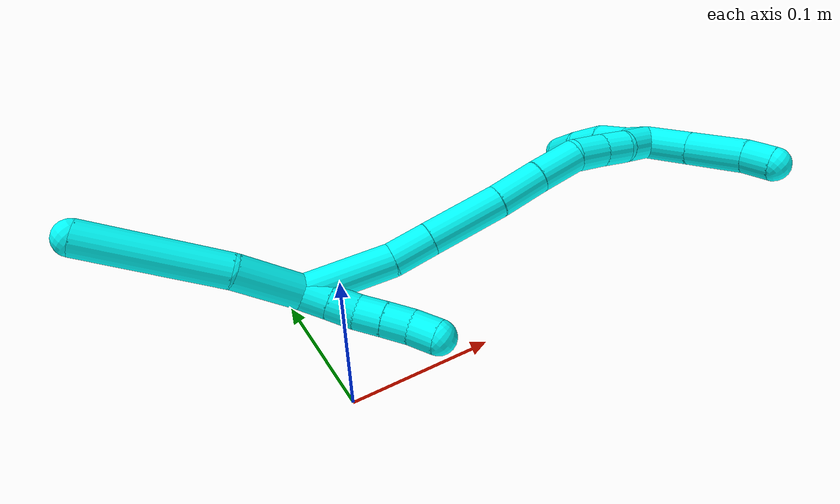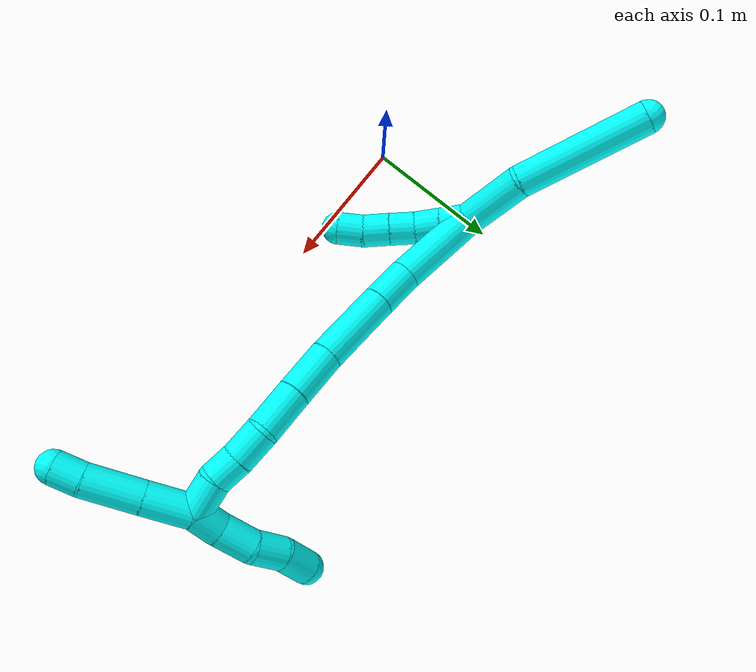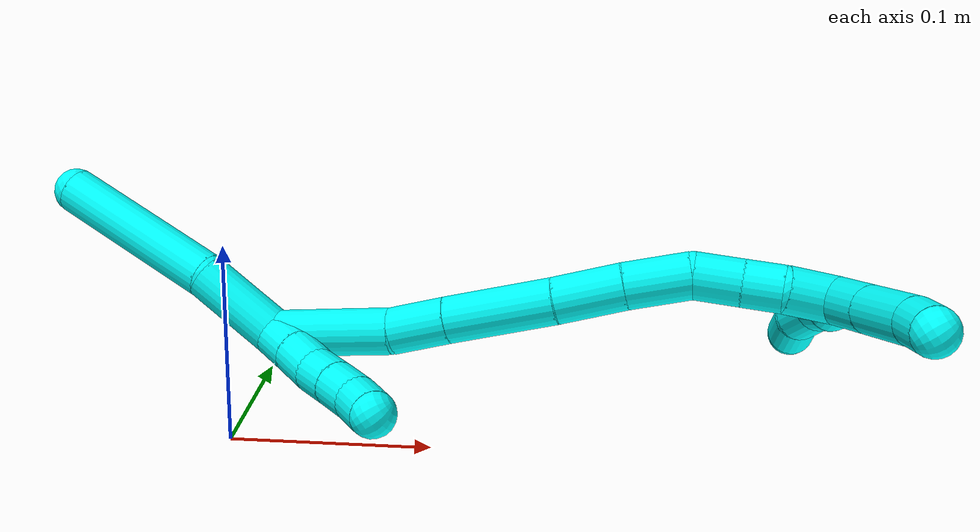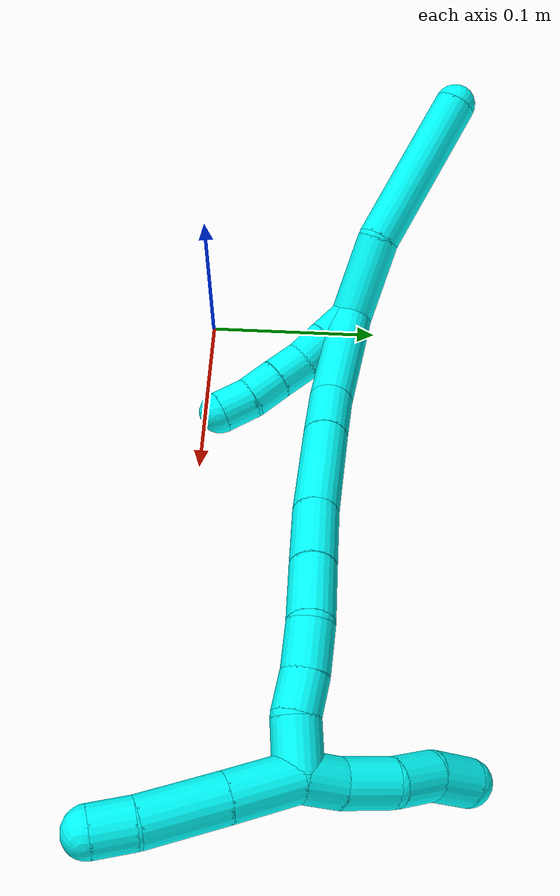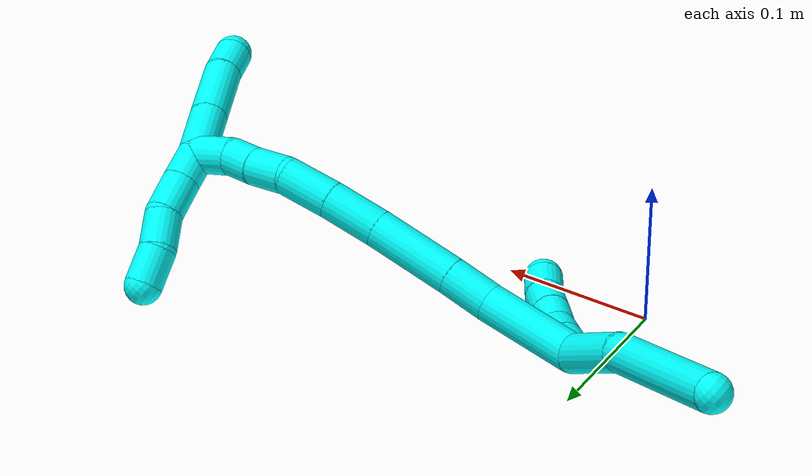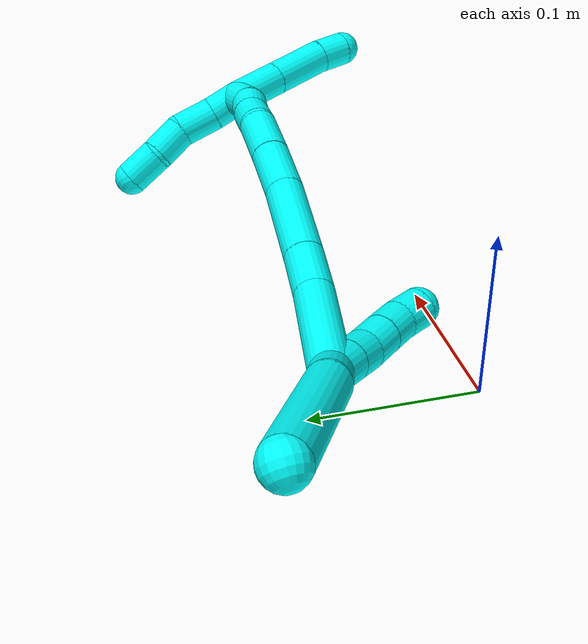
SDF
<sdf version="1.7">
 <world name="default">
  <model name="3">
   <static>0</static>
   <link name="3">
    <collision name="collision-cylinder-e_1_2_8">
     <pose>-0.023205 0.003755 -0.008558 -2.72813 -1.18795 2.53937</pose>
     <geometry><cylinder><radius>0.0125</radius><length>0.050032</length></cylinder></geometry>
     <surface>
      <friction><ode><mu>1.16</mu><mu2>1.16</mu2><slip1>0</slip1><slip2>0</slip2></ode></friction>
      <contact><ode><kp>1e+06</kp><kd>1</kd><max_vel>0</max_vel><min_depth>0.001</min_depth></ode></contact>
     </surface>
    </collision>
    <visual name="visual-cylinder-e_1_2_8">
     <pose>-0.023205 0.003755 -0.008558 -2.72813 -1.18795 2.53937</pose>
     <geometry><cylinder><radius>0.0125</radius><length>0.050032</length></cylinder></geometry>
     <material><ambient>0.003922 1 0.996078 1</ambient></material>
    </visual>
    <collision name="collision-cylinder-e_2_8_6">
     <pose>-0.087188 0.024235 -0.04069 -2.52454 -0.954169 2.03659</pose>
     <geometry><cylinder><radius>0.0125</radius><length>0.099968</length></cylinder></geometry>
     <surface>
      <friction><ode><mu>1.16</mu><mu2>1.16</mu2><slip1>0</slip1><slip2>0</slip2></ode></friction>
      <contact><ode><kp>1e+06</kp><kd>1</kd><max_vel>0</max_vel><min_depth>0.001</min_depth></ode></contact>
     </surface>
    </collision>
    <visual name="visual-cylinder-e_2_8_6">
     <pose>-0.087188 0.024235 -0.04069 -2.52454 -0.954169 2.03659</pose>
     <geometry><cylinder><radius>0.0125</radius><length>0.099968</length></cylinder></geometry>
     <material><ambient>0.003922 1 0.996078 1</ambient></material>
    </visual>
    <collision name="collision-cylinder-e_1_2_9">
     <pose>0.006921 -0.006111 0.003842 1.00948 0.764356 0.43703</pose>
     <geometry><cylinder><radius>0.0125</radius><length>0.02</length></cylinder></geometry>
     <surface>
      <friction><ode><mu>1.16</mu><mu2>1.16</mu2><slip1>0</slip1><slip2>0</slip2></ode></friction>
      <contact><ode><kp>1e+06</kp><kd>1</kd><max_vel>0</max_vel><min_depth>0.001</min_depth></ode></contact>
     </surface>
    </collision>
    <visual name="visual-cylinder-e_1_2_9">
     <pose>0.006921 -0.006111 0.003842 1.00948 0.764356 0.43703</pose>
     <geometry><cylinder><radius>0.0125</radius><length>0.02</length></cylinder></geometry>
     <material><ambient>0.003922 1 0.996078 1</ambient></material>
    </visual>
    <collision name="collision-cylinder-e_2_9_10">
     <pose>0.020872 -0.018296 0.011381 1.02411 0.77972 0.453933</pose>
     <geometry><cylinder><radius>0.0125</radius><length>0.02</length></cylinder></geometry>
     <surface>
      <friction><ode><mu>1.16</mu><mu2>1.16</mu2><slip1>0</slip1><slip2>0</slip2></ode></friction>
      <contact><ode><kp>1e+06</kp><kd>1</kd><max_vel>0</max_vel><min_depth>0.001</min_depth></ode></contact>
     </surface>
    </collision>
    <visual name="visual-cylinder-e_2_9_10">
     <pose>0.020872 -0.018296 0.011381 1.02411 0.77972 0.453933</pose>
     <geometry><cylinder><radius>0.0125</radius><length>0.02</length></cylinder></geometry>
     <material><ambient>0.003922 1 0.996078 1</ambient></material>
    </visual>
    <collision name="collision-cylinder-e_3_10_11">
     <pose>0.033418 -0.03135 0.019647 0.991183 0.584103 0.322239</pose>
     <geometry><cylinder><radius>0.0125</radius><length>0.02</length></cylinder></geometry>
     <surface>
      <friction><ode><mu>1.16</mu><mu2>1.16</mu2><slip1>0</slip1><slip2>0</slip2></ode></friction>
      <contact><ode><kp>1e+06</kp><kd>1</kd><max_vel>0</max_vel><min_depth>0.001</min_depth></ode></contact>
     </surface>
    </collision>
    <visual name="visual-cylinder-e_3_10_11">
     <pose>0.033418 -0.03135 0.019647 0.991183 0.584103 0.322239</pose>
     <geometry><cylinder><radius>0.0125</radius><length>0.02</length></cylinder></geometry>
     <material><ambient>0.003922 1 0.996078 1</ambient></material>
    </visual>
    <collision name="collision-cylinder-e_4_11_12">
     <pose>0.044708 -0.045174 0.028664 0.994475 0.61583 0.341835</pose>
     <geometry><cylinder><radius>0.0125</radius><length>0.02</length></cylinder></geometry>
     <surface>
      <friction><ode><mu>1.16</mu><mu2>1.16</mu2><slip1>0</slip1><slip2>0</slip2></ode></friction>
      <contact><ode><kp>1e+06</kp><kd>1</kd><max_vel>0</max_vel><min_depth>0.001</min_depth></ode></contact>
     </surface>
    </collision>
    <visual name="visual-cylinder-e_4_11_12">
     <pose>0.044708 -0.045174 0.028664 0.994475 0.61583 0.341835</pose>
     <geometry><cylinder><radius>0.0125</radius><length>0.02</length></cylinder></geometry>
     <material><ambient>0.003922 1 0.996078 1</ambient></material>
    </visual>
    <collision name="collision-cylinder-e_5_12_5">
     <pose>0.055224 -0.060045 0.036736 1.14676 0.493707 0.32262</pose>
     <geometry><cylinder><radius>0.0125</radius><length>0.02</length></cylinder></geometry>
     <surface>
      <friction><ode><mu>1.16</mu><mu2>1.16</mu2><slip1>0</slip1><slip2>0</slip2></ode></friction>
      <contact><ode><kp>1e+06</kp><kd>1</kd><max_vel>0</max_vel><min_depth>0.001</min_depth></ode></contact>
     </surface>
    </collision>
    <visual name="visual-cylinder-e_5_12_5">
     <pose>0.055224 -0.060045 0.036736 1.14676 0.493707 0.32262</pose>
     <geometry><cylinder><radius>0.0125</radius><length>0.02</length></cylinder></geometry>
     <material><ambient>0.003922 1 0.996078 1</ambient></material>
    </visual>
    <collision name="collision-cylinder-e_1_2_13">
     <pose>0.016243 -0.003818 0.028323 0.133998 0.516818 0.035468</pose>
     <geometry><cylinder><radius>0.0125</radius><length>0.065745</length></cylinder></geometry>
     <surface>
      <friction><ode><mu>1.16</mu><mu2>1.16</mu2><slip1>0</slip1><slip2>0</slip2></ode></friction>
      <contact><ode><kp>1e+06</kp><kd>1</kd><max_vel>0</max_vel><min_depth>0.001</min_depth></ode></contact>
     </surface>
    </collision>
    <visual name="visual-cylinder-e_1_2_13">
     <pose>0.016243 -0.003818 0.028323 0.133998 0.516818 0.035468</pose>
     <geometry><cylinder><radius>0.0125</radius><length>0.065745</length></cylinder></geometry>
     <material><ambient>0.003922 1 0.996078 1</ambient></material>
    </visual>
    <collision name="collision-cylinder-e_2_13_14">
     <pose>0.037831 -0.008655 0.071008 0.070797 0.355487 0.012723</pose>
     <geometry><cylinder><radius>0.0125</radius><length>0.030717</length></cylinder></geometry>
     <surface>
      <friction><ode><mu>1.16</mu><mu2>1.16</mu2><slip1>0</slip1><slip2>0</slip2></ode></friction>
      <contact><ode><kp>1e+06</kp><kd>1</kd><max_vel>0</max_vel><min_depth>0.001</min_depth></ode></contact>
     </surface>
    </collision>
    <visual name="visual-cylinder-e_2_13_14">
     <pose>0.037831 -0.008655 0.071008 0.070797 0.355487 0.012723</pose>
     <geometry><cylinder><radius>0.0125</radius><length>0.030717</length></cylinder></geometry>
     <material><ambient>0.003922 1 0.996078 1</ambient></material>
    </visual>
    <collision name="collision-cylinder-e_3_14_15">
     <pose>0.053828 -0.011085 0.112218 0.052547 0.377214 0.010032</pose>
     <geometry><cylinder><radius>0.0125</radius><length>0.057836</length></cylinder></geometry>
     <surface>
      <friction><ode><mu>1.16</mu><mu2>1.16</mu2><slip1>0</slip1><slip2>0</slip2></ode></friction>
      <contact><ode><kp>1e+06</kp><kd>1</kd><max_vel>0</max_vel><min_depth>0.001</min_depth></ode></contact>
     </surface>
    </collision>
    <visual name="visual-cylinder-e_3_14_15">
     <pose>0.053828 -0.011085 0.112218 0.052547 0.377214 0.010032</pose>
     <geometry><cylinder><radius>0.0125</radius><length>0.057836</length></cylinder></geometry>
     <material><ambient>0.003922 1 0.996078 1</ambient></material>
    </visual>
    <collision name="collision-cylinder-e_4_15_16">
     <pose>0.070861 -0.012379 0.156296 -0.006858 0.354682 -0.001229</pose>
     <geometry><cylinder><radius>0.0125</radius><length>0.036748</length></cylinder></geometry>
     <surface>
      <friction><ode><mu>1.16</mu><mu2>1.16</mu2><slip1>0</slip1><slip2>0</slip2></ode></friction>
      <contact><ode><kp>1e+06</kp><kd>1</kd><max_vel>0</max_vel><min_depth>0.001</min_depth></ode></contact>
     </surface>
    </collision>
    <visual name="visual-cylinder-e_4_15_16">
     <pose>0.070861 -0.012379 0.156296 -0.006858 0.354682 -0.001229</pose>
     <geometry><cylinder><radius>0.0125</radius><length>0.036748</length></cylinder></geometry>
     <material><ambient>0.003922 1 0.996078 1</ambient></material>
    </visual>
    <collision name="collision-cylinder-e_5_16_17">
     <pose>0.084069 -0.011894 0.189487 -0.023012 0.40411 -0.004714</pose>
     <geometry><cylinder><radius>0.0125</radius><length>0.034728</length></cylinder></geometry>
     <surface>
      <friction><ode><mu>1.16</mu><mu2>1.16</mu2><slip1>0</slip1><slip2>0</slip2></ode></friction>
      <contact><ode><kp>1e+06</kp><kd>1</kd><max_vel>0</max_vel><min_depth>0.001</min_depth></ode></contact>
     </surface>
    </collision>
    <visual name="visual-cylinder-e_5_16_17">
     <pose>0.084069 -0.011894 0.189487 -0.023012 0.40411 -0.004714</pose>
     <geometry><cylinder><radius>0.0125</radius><length>0.034728</length></cylinder></geometry>
     <material><ambient>0.003922 1 0.996078 1</ambient></material>
    </visual>
    <collision name="collision-cylinder-e_6_17_18">
     <pose>0.099317 -0.011398 0.215048 -0.013341 0.719934 -0.005021</pose>
     <geometry><cylinder><radius>0.0125</radius><length>0.02554</length></cylinder></geometry>
     <surface>
      <friction><ode><mu>1.16</mu><mu2>1.16</mu2><slip1>0</slip1><slip2>0</slip2></ode></friction>
      <contact><ode><kp>1e+06</kp><kd>1</kd><max_vel>0</max_vel><min_depth>0.001</min_depth></ode></contact>
     </surface>
    </collision>
    <visual name="visual-cylinder-e_6_17_18">
     <pose>0.099317 -0.011398 0.215048 -0.013341 0.719934 -0.005021</pose>
     <geometry><cylinder><radius>0.0125</radius><length>0.02554</length></cylinder></geometry>
     <material><ambient>0.003922 1 0.996078 1</ambient></material>
    </visual>
    <collision name="collision-cylinder-e_7_18_19">
     <pose>0.114564 -0.012297 0.232706 0.126809 0.699016 0.046272</pose>
     <geometry><cylinder><radius>0.0125</radius><length>0.021221</length></cylinder></geometry>
     <surface>
      <friction><ode><mu>1.16</mu><mu2>1.16</mu2><slip1>0</slip1><slip2>0</slip2></ode></friction>
      <contact><ode><kp>1e+06</kp><kd>1</kd><max_vel>0</max_vel><min_depth>0.001</min_depth></ode></contact>
     </surface>
    </collision>
    <visual name="visual-cylinder-e_7_18_19">
     <pose>0.114564 -0.012297 0.232706 0.126809 0.699016 0.046272</pose>
     <geometry><cylinder><radius>0.0125</radius><length>0.021221</length></cylinder></geometry>
     <material><ambient>0.003922 1 0.996078 1</ambient></material>
    </visual>
    <collision name="collision-cylinder-e_8_19_1">
     <pose>0.131102 -0.010771 0.250131 -0.266093 0.785442 -0.110768</pose>
     <geometry><cylinder><radius>0.0125</radius><length>0.027465</length></cylinder></geometry>
     <surface>
      <friction><ode><mu>1.16</mu><mu2>1.16</mu2><slip1>0</slip1><slip2>0</slip2></ode></friction>
      <contact><ode><kp>1e+06</kp><kd>1</kd><max_vel>0</max_vel><min_depth>0.001</min_depth></ode></contact>
     </surface>
    </collision>
    <visual name="visual-cylinder-e_8_19_1">
     <pose>0.131102 -0.010771 0.250131 -0.266093 0.785442 -0.110768</pose>
     <geometry><cylinder><radius>0.0125</radius><length>0.027465</length></cylinder></geometry>
     <material><ambient>0.003922 1 0.996078 1</ambient></material>
    </visual>
    <collision name="collision-cylinder-e_1_1_20">
     <pose>0.144783 -0.02452 0.265942 1.19442 0.222713 0.151793</pose>
     <geometry><cylinder><radius>0.0125</radius><length>0.035946</length></cylinder></geometry>
     <surface>
      <friction><ode><mu>1.16</mu><mu2>1.16</mu2><slip1>0</slip1><slip2>0</slip2></ode></friction>
      <contact><ode><kp>1e+06</kp><kd>1</kd><max_vel>0</max_vel><min_depth>0.001</min_depth></ode></contact>
     </surface>
    </collision>
    <visual name="visual-cylinder-e_1_1_20">
     <pose>0.144783 -0.02452 0.265942 1.19442 0.222713 0.151793</pose>
     <geometry><cylinder><radius>0.0125</radius><length>0.035946</length></cylinder></geometry>
     <material><ambient>0.003922 1 0.996078 1</ambient></material>
    </visual>
    <collision name="collision-cylinder-e_2_20_21">
     <pose>0.153288 -0.06025 0.279926 1.2005 0.21427 0.146968</pose>
     <geometry><cylinder><radius>0.0125</radius><length>0.042658</length></cylinder></geometry>
     <surface>
      <friction><ode><mu>1.16</mu><mu2>1.16</mu2><slip1>0</slip1><slip2>0</slip2></ode></friction>
      <contact><ode><kp>1e+06</kp><kd>1</kd><max_vel>0</max_vel><min_depth>0.001</min_depth></ode></contact>
     </surface>
    </collision>
    <visual name="visual-cylinder-e_2_20_21">
     <pose>0.153288 -0.06025 0.279926 1.2005 0.21427 0.146968</pose>
     <geometry><cylinder><radius>0.0125</radius><length>0.042658</length></cylinder></geometry>
     <material><ambient>0.003922 1 0.996078 1</ambient></material>
    </visual>
    <collision name="collision-cylinder-e_3_21_4">
     <pose>0.160198 -0.089834 0.289855 1.34001 0.223905 0.177668</pose>
     <geometry><cylinder><radius>0.0125</radius><length>0.021397</length></cylinder></geometry>
     <surface>
      <friction><ode><mu>1.16</mu><mu2>1.16</mu2><slip1>0</slip1><slip2>0</slip2></ode></friction>
      <contact><ode><kp>1e+06</kp><kd>1</kd><max_vel>0</max_vel><min_depth>0.001</min_depth></ode></contact>
     </surface>
    </collision>
    <visual name="visual-cylinder-e_3_21_4">
     <pose>0.160198 -0.089834 0.289855 1.34001 0.223905 0.177668</pose>
     <geometry><cylinder><radius>0.0125</radius><length>0.021397</length></cylinder></geometry>
     <material><ambient>0.003922 1 0.996078 1</ambient></material>
    </visual>
    <collision name="collision-cylinder-e_1_1_22">
     <pose>0.142996 0.002216 0.256868 -1.81777 0.200205 -0.256394</pose>
     <geometry><cylinder><radius>0.0125</radius><length>0.021959</length></cylinder></geometry>
     <surface>
      <friction><ode><mu>1.16</mu><mu2>1.16</mu2><slip1>0</slip1><slip2>0</slip2></ode></friction>
      <contact><ode><kp>1e+06</kp><kd>1</kd><max_vel>0</max_vel><min_depth>0.001</min_depth></ode></contact>
     </surface>
    </collision>
    <visual name="visual-cylinder-e_1_1_22">
     <pose>0.142996 0.002216 0.256868 -1.81777 0.200205 -0.256394</pose>
     <geometry><cylinder><radius>0.0125</radius><length>0.021959</length></cylinder></geometry>
     <material><ambient>0.003922 1 0.996078 1</ambient></material>
    </visual>
    <collision name="collision-cylinder-e_2_22_23">
     <pose>0.145358 0.026008 0.250716 -1.82854 0.012882 -0.016717</pose>
     <geometry><cylinder><radius>0.0125</radius><length>0.027631</length></cylinder></geometry>
     <surface>
      <friction><ode><mu>1.16</mu><mu2>1.16</mu2><slip1>0</slip1><slip2>0</slip2></ode></friction>
      <contact><ode><kp>1e+06</kp><kd>1</kd><max_vel>0</max_vel><min_depth>0.001</min_depth></ode></contact>
     </surface>
    </collision>
    <visual name="visual-cylinder-e_2_22_23">
     <pose>0.145358 0.026008 0.250716 -1.82854 0.012882 -0.016717</pose>
     <geometry><cylinder><radius>0.0125</radius><length>0.027631</length></cylinder></geometry>
     <material><ambient>0.003922 1 0.996078 1</ambient></material>
    </visual>
    <collision name="collision-cylinder-e_3_23_24">
     <pose>0.146617 0.049835 0.240667 -2.12833 0.087444 -0.157347</pose>
     <geometry><cylinder><radius>0.0125</radius><length>0.02477</length></cylinder></geometry>
     <surface>
      <friction><ode><mu>1.16</mu><mu2>1.16</mu2><slip1>0</slip1><slip2>0</slip2></ode></friction>
      <contact><ode><kp>1e+06</kp><kd>1</kd><max_vel>0</max_vel><min_depth>0.001</min_depth></ode></contact>
     </surface>
    </collision>
    <visual name="visual-cylinder-e_3_23_24">
     <pose>0.146617 0.049835 0.240667 -2.12833 0.087444 -0.157347</pose>
     <geometry><cylinder><radius>0.0125</radius><length>0.02477</length></cylinder></geometry>
     <material><ambient>0.003922 1 0.996078 1</ambient></material>
    </visual>
    <collision name="collision-cylinder-e_4_24_3">
     <pose>0.15167 0.071538 0.229409 -1.96931 0.314937 -0.469462</pose>
     <geometry><cylinder><radius>0.0125</radius><length>0.02564</length></cylinder></geometry>
     <surface>
      <friction><ode><mu>1.16</mu><mu2>1.16</mu2><slip1>0</slip1><slip2>0</slip2></ode></friction>
      <contact><ode><kp>1e+06</kp><kd>1</kd><max_vel>0</max_vel><min_depth>0.001</min_depth></ode></contact>
     </surface>
    </collision>
    <visual name="visual-cylinder-e_4_24_3">
     <pose>0.15167 0.071538 0.229409 -1.96931 0.314937 -0.469462</pose>
     <geometry><cylinder><radius>0.0125</radius><length>0.02564</length></cylinder></geometry>
     <material><ambient>0.003922 1 0.996078 1</ambient></material>
    </visual>
    <collision name="collision-sphere-3">
     <pose>0.155641 0.082773 0.224679 0 -0 0</pose>
     <geometry><sphere><radius>0.0125</radius></sphere></geometry>
     <surface>
      <friction><ode><mu>1.16</mu><mu2>1.16</mu2><slip1>0</slip1><slip2>0</slip2></ode></friction>
      <contact><ode><kp>1e+06</kp><kd>1</kd><max_vel>0</max_vel><min_depth>0.001</min_depth></ode></contact>
     </surface>
    </collision>
    <visual name="visual-sphere-3">
     <pose>0.155641 0.082773 0.224679 0 -0 0</pose>
     <geometry><sphere><radius>0.0125</radius></sphere></geometry>
     <material><ambient>0.003922 1 0.996078 1</ambient></material>
    </visual>
    <collision name="collision-sphere-24">
     <pose>0.147699 0.060304 0.234139 0 -0 0</pose>
     <geometry><sphere><radius>0.0125</radius></sphere></geometry>
     <surface>
      <friction><ode><mu>1.16</mu><mu2>1.16</mu2><slip1>0</slip1><slip2>0</slip2></ode></friction>
      <contact><ode><kp>1e+06</kp><kd>1</kd><max_vel>0</max_vel><min_depth>0.001</min_depth></ode></contact>
     </surface>
    </collision>
    <visual name="visual-sphere-24">
     <pose>0.147699 0.060304 0.234139 0 -0 0</pose>
     <geometry><sphere><radius>0.0125</radius></sphere></geometry>
     <material><ambient>0.003922 1 0.996078 1</ambient></material>
    </visual>
    <collision name="collision-sphere-23">
     <pose>0.145536 0.039366 0.247195 0 -0 0</pose>
     <geometry><sphere><radius>0.0125</radius></sphere></geometry>
     <surface>
      <friction><ode><mu>1.16</mu><mu2>1.16</mu2><slip1>0</slip1><slip2>0</slip2></ode></friction>
      <contact><ode><kp>1e+06</kp><kd>1</kd><max_vel>0</max_vel><min_depth>0.001</min_depth></ode></contact>
     </surface>
    </collision>
    <visual name="visual-sphere-23">
     <pose>0.145536 0.039366 0.247195 0 -0 0</pose>
     <geometry><sphere><radius>0.0125</radius></sphere></geometry>
     <material><ambient>0.003922 1 0.996078 1</ambient></material>
    </visual>
    <collision name="collision-sphere-22">
     <pose>0.14518 0.012649 0.254238 0 -0 0</pose>
     <geometry><sphere><radius>0.0125</radius></sphere></geometry>
     <surface>
      <friction><ode><mu>1.16</mu><mu2>1.16</mu2><slip1>0</slip1><slip2>0</slip2></ode></friction>
      <contact><ode><kp>1e+06</kp><kd>1</kd><max_vel>0</max_vel><min_depth>0.001</min_depth></ode></contact>
     </surface>
    </collision>
    <visual name="visual-sphere-22">
     <pose>0.14518 0.012649 0.254238 0 -0 0</pose>
     <geometry><sphere><radius>0.0125</radius></sphere></geometry>
     <material><ambient>0.003922 1 0.996078 1</ambient></material>
    </visual>
    <collision name="collision-sphere-4">
     <pose>0.162574 -0.099988 0.292241 0 -0 0</pose>
     <geometry><sphere><radius>0.0125</radius></sphere></geometry>
     <surface>
      <friction><ode><mu>1.16</mu><mu2>1.16</mu2><slip1>0</slip1><slip2>0</slip2></ode></friction>
      <contact><ode><kp>1e+06</kp><kd>1</kd><max_vel>0</max_vel><min_depth>0.001</min_depth></ode></contact>
     </surface>
    </collision>
    <visual name="visual-sphere-4">
     <pose>0.162574 -0.099988 0.292241 0 -0 0</pose>
     <geometry><sphere><radius>0.0125</radius></sphere></geometry>
     <material><ambient>0.003922 1 0.996078 1</ambient></material>
    </visual>
    <collision name="collision-sphere-21">
     <pose>0.157823 -0.079679 0.287468 0 -0 0</pose>
     <geometry><sphere><radius>0.0125</radius></sphere></geometry>
     <surface>
      <friction><ode><mu>1.16</mu><mu2>1.16</mu2><slip1>0</slip1><slip2>0</slip2></ode></friction>
      <contact><ode><kp>1e+06</kp><kd>1</kd><max_vel>0</max_vel><min_depth>0.001</min_depth></ode></contact>
     </surface>
    </collision>
    <visual name="visual-sphere-21">
     <pose>0.157823 -0.079679 0.287468 0 -0 0</pose>
     <geometry><sphere><radius>0.0125</radius></sphere></geometry>
     <material><ambient>0.003922 1 0.996078 1</ambient></material>
    </visual>
    <collision name="collision-sphere-20">
     <pose>0.148752 -0.040822 0.272384 0 -0 0</pose>
     <geometry><sphere><radius>0.0125</radius></sphere></geometry>
     <surface>
      <friction><ode><mu>1.16</mu><mu2>1.16</mu2><slip1>0</slip1><slip2>0</slip2></ode></friction>
      <contact><ode><kp>1e+06</kp><kd>1</kd><max_vel>0</max_vel><min_depth>0.001</min_depth></ode></contact>
     </surface>
    </collision>
    <visual name="visual-sphere-20">
     <pose>0.148752 -0.040822 0.272384 0 -0 0</pose>
     <geometry><sphere><radius>0.0125</radius></sphere></geometry>
     <material><ambient>0.003922 1 0.996078 1</ambient></material>
    </visual>
    <collision name="collision-sphere-11">
     <pose>0.038932 -0.03833 0.024216 0 -0 0</pose>
     <geometry><sphere><radius>0.0125</radius></sphere></geometry>
     <surface>
      <friction><ode><mu>1.16</mu><mu2>1.16</mu2><slip1>0</slip1><slip2>0</slip2></ode></friction>
      <contact><ode><kp>1e+06</kp><kd>1</kd><max_vel>0</max_vel><min_depth>0.001</min_depth></ode></contact>
     </surface>
    </collision>
    <visual name="visual-sphere-11">
     <pose>0.038932 -0.03833 0.024216 0 -0 0</pose>
     <geometry><sphere><radius>0.0125</radius></sphere></geometry>
     <material><ambient>0.003922 1 0.996078 1</ambient></material>
    </visual>
    <collision name="collision-sphere-10">
     <pose>0.027903 -0.024371 0.015078 0 -0 0</pose>
     <geometry><sphere><radius>0.0125</radius></sphere></geometry>
     <surface>
      <friction><ode><mu>1.16</mu><mu2>1.16</mu2><slip1>0</slip1><slip2>0</slip2></ode></friction>
      <contact><ode><kp>1e+06</kp><kd>1</kd><max_vel>0</max_vel><min_depth>0.001</min_depth></ode></contact>
     </surface>
    </collision>
    <visual name="visual-sphere-10">
     <pose>0.027903 -0.024371 0.015078 0 -0 0</pose>
     <geometry><sphere><radius>0.0125</radius></sphere></geometry>
     <material><ambient>0.003922 1 0.996078 1</ambient></material>
    </visual>
    <collision name="collision-sphere-6">
     <pose>-0.127967 0.04096 -0.064265 0 -0 0</pose>
     <geometry><sphere><radius>0.0125</radius></sphere></geometry>
     <surface>
      <friction><ode><mu>1.16</mu><mu2>1.16</mu2><slip1>0</slip1><slip2>0</slip2></ode></friction>
      <contact><ode><kp>1e+06</kp><kd>1</kd><max_vel>0</max_vel><min_depth>0.001</min_depth></ode></contact>
     </surface>
    </collision>
    <visual name="visual-sphere-6">
     <pose>-0.127967 0.04096 -0.064265 0 -0 0</pose>
     <geometry><sphere><radius>0.0125</radius></sphere></geometry>
     <material><ambient>0.003922 1 0.996078 1</ambient></material>
    </visual>
    <collision name="collision-sphere-9">
     <pose>0.013841 -0.012221 0.007685 0 -0 0</pose>
     <geometry><sphere><radius>0.0125</radius></sphere></geometry>
     <surface>
      <friction><ode><mu>1.16</mu><mu2>1.16</mu2><slip1>0</slip1><slip2>0</slip2></ode></friction>
      <contact><ode><kp>1e+06</kp><kd>1</kd><max_vel>0</max_vel><min_depth>0.001</min_depth></ode></contact>
     </surface>
    </collision>
    <visual name="visual-sphere-9">
     <pose>0.013841 -0.012221 0.007685 0 -0 0</pose>
     <geometry><sphere><radius>0.0125</radius></sphere></geometry>
     <material><ambient>0.003922 1 0.996078 1</ambient></material>
    </visual>
    <collision name="collision-sphere-2">
     <geometry><sphere><radius>0.0125</radius></sphere></geometry>
     <surface>
      <friction><ode><mu>1.16</mu><mu2>1.16</mu2><slip1>0</slip1><slip2>0</slip2></ode></friction>
      <contact><ode><kp>1e+06</kp><kd>1</kd><max_vel>0</max_vel><min_depth>0.001</min_depth></ode></contact>
     </surface>
    </collision>
    <visual name="visual-sphere-2">
     <geometry><sphere><radius>0.0125</radius></sphere></geometry>
     <material><ambient>0.003922 1 0.996078 1</ambient></material>
    </visual>
    <collision name="collision-sphere-19">
     <pose>0.121391 -0.013325 0.240763 0 -0 0</pose>
     <geometry><sphere><radius>0.0125</radius></sphere></geometry>
     <surface>
      <friction><ode><mu>1.16</mu><mu2>1.16</mu2><slip1>0</slip1><slip2>0</slip2></ode></friction>
      <contact><ode><kp>1e+06</kp><kd>1</kd><max_vel>0</max_vel><min_depth>0.001</min_depth></ode></contact>
     </surface>
    </collision>
    <visual name="visual-sphere-19">
     <pose>0.121391 -0.013325 0.240763 0 -0 0</pose>
     <geometry><sphere><radius>0.0125</radius></sphere></geometry>
     <material><ambient>0.003922 1 0.996078 1</ambient></material>
    </visual>
    <collision name="collision-sphere-8">
     <pose>-0.046409 0.007509 -0.017115 0 -0 0</pose>
     <geometry><sphere><radius>0.0125</radius></sphere></geometry>
     <surface>
      <friction><ode><mu>1.16</mu><mu2>1.16</mu2><slip1>0</slip1><slip2>0</slip2></ode></friction>
      <contact><ode><kp>1e+06</kp><kd>1</kd><max_vel>0</max_vel><min_depth>0.001</min_depth></ode></contact>
     </surface>
    </collision>
    <visual name="visual-sphere-8">
     <pose>-0.046409 0.007509 -0.017115 0 -0 0</pose>
     <geometry><sphere><radius>0.0125</radius></sphere></geometry>
     <material><ambient>0.003922 1 0.996078 1</ambient></material>
    </visual>
    <collision name="collision-sphere-12">
     <pose>0.050485 -0.052019 0.033113 0 -0 0</pose>
     <geometry><sphere><radius>0.0125</radius></sphere></geometry>
     <surface>
      <friction><ode><mu>1.16</mu><mu2>1.16</mu2><slip1>0</slip1><slip2>0</slip2></ode></friction>
      <contact><ode><kp>1e+06</kp><kd>1</kd><max_vel>0</max_vel><min_depth>0.001</min_depth></ode></contact>
     </surface>
    </collision>
    <visual name="visual-sphere-12">
     <pose>0.050485 -0.052019 0.033113 0 -0 0</pose>
     <geometry><sphere><radius>0.0125</radius></sphere></geometry>
     <material><ambient>0.003922 1 0.996078 1</ambient></material>
    </visual>
    <collision name="collision-sphere-5">
     <pose>0.059963 -0.068071 0.040359 0 -0 0</pose>
     <geometry><sphere><radius>0.0125</radius></sphere></geometry>
     <surface>
      <friction><ode><mu>1.16</mu><mu2>1.16</mu2><slip1>0</slip1><slip2>0</slip2></ode></friction>
      <contact><ode><kp>1e+06</kp><kd>1</kd><max_vel>0</max_vel><min_depth>0.001</min_depth></ode></contact>
     </surface>
    </collision>
    <visual name="visual-sphere-5">
     <pose>0.059963 -0.068071 0.040359 0 -0 0</pose>
     <geometry><sphere><radius>0.0125</radius></sphere></geometry>
     <material><ambient>0.003922 1 0.996078 1</ambient></material>
    </visual>
    <collision name="collision-sphere-13">
     <pose>0.032486 -0.007636 0.056646 0 -0 0</pose>
     <geometry><sphere><radius>0.0125</radius></sphere></geometry>
     <surface>
      <friction><ode><mu>1.16</mu><mu2>1.16</mu2><slip1>0</slip1><slip2>0</slip2></ode></friction>
      <contact><ode><kp>1e+06</kp><kd>1</kd><max_vel>0</max_vel><min_depth>0.001</min_depth></ode></contact>
     </surface>
    </collision>
    <visual name="visual-sphere-13">
     <pose>0.032486 -0.007636 0.056646 0 -0 0</pose>
     <geometry><sphere><radius>0.0125</radius></sphere></geometry>
     <material><ambient>0.003922 1 0.996078 1</ambient></material>
    </visual>
    <collision name="collision-sphere-14">
     <pose>0.043177 -0.009673 0.08537 0 -0 0</pose>
     <geometry><sphere><radius>0.0125</radius></sphere></geometry>
     <surface>
      <friction><ode><mu>1.16</mu><mu2>1.16</mu2><slip1>0</slip1><slip2>0</slip2></ode></friction>
      <contact><ode><kp>1e+06</kp><kd>1</kd><max_vel>0</max_vel><min_depth>0.001</min_depth></ode></contact>
     </surface>
    </collision>
    <visual name="visual-sphere-14">
     <pose>0.043177 -0.009673 0.08537 0 -0 0</pose>
     <geometry><sphere><radius>0.0125</radius></sphere></geometry>
     <material><ambient>0.003922 1 0.996078 1</ambient></material>
    </visual>
    <collision name="collision-sphere-15">
     <pose>0.064479 -0.012497 0.139066 0 -0 0</pose>
     <geometry><sphere><radius>0.0125</radius></sphere></geometry>
     <surface>
      <friction><ode><mu>1.16</mu><mu2>1.16</mu2><slip1>0</slip1><slip2>0</slip2></ode></friction>
      <contact><ode><kp>1e+06</kp><kd>1</kd><max_vel>0</max_vel><min_depth>0.001</min_depth></ode></contact>
     </surface>
    </collision>
    <visual name="visual-sphere-15">
     <pose>0.064479 -0.012497 0.139066 0 -0 0</pose>
     <geometry><sphere><radius>0.0125</radius></sphere></geometry>
     <material><ambient>0.003922 1 0.996078 1</ambient></material>
    </visual>
    <collision name="collision-sphere-16">
     <pose>0.077242 -0.012261 0.173525 0 -0 0</pose>
     <geometry><sphere><radius>0.0125</radius></sphere></geometry>
     <surface>
      <friction><ode><mu>1.16</mu><mu2>1.16</mu2><slip1>0</slip1><slip2>0</slip2></ode></friction>
      <contact><ode><kp>1e+06</kp><kd>1</kd><max_vel>0</max_vel><min_depth>0.001</min_depth></ode></contact>
     </surface>
    </collision>
    <visual name="visual-sphere-16">
     <pose>0.077242 -0.012261 0.173525 0 -0 0</pose>
     <geometry><sphere><radius>0.0125</radius></sphere></geometry>
     <material><ambient>0.003922 1 0.996078 1</ambient></material>
    </visual>
    <collision name="collision-sphere-17">
     <pose>0.090897 -0.011526 0.205448 0 -0 0</pose>
     <geometry><sphere><radius>0.0125</radius></sphere></geometry>
     <surface>
      <friction><ode><mu>1.16</mu><mu2>1.16</mu2><slip1>0</slip1><slip2>0</slip2></ode></friction>
      <contact><ode><kp>1e+06</kp><kd>1</kd><max_vel>0</max_vel><min_depth>0.001</min_depth></ode></contact>
     </surface>
    </collision>
    <visual name="visual-sphere-17">
     <pose>0.090897 -0.011526 0.205448 0 -0 0</pose>
     <geometry><sphere><radius>0.0125</radius></sphere></geometry>
     <material><ambient>0.003922 1 0.996078 1</ambient></material>
    </visual>
    <collision name="collision-sphere-18">
     <pose>0.107736 -0.01127 0.224649 0 -0 0</pose>
     <geometry><sphere><radius>0.0125</radius></sphere></geometry>
     <surface>
      <friction><ode><mu>1.16</mu><mu2>1.16</mu2><slip1>0</slip1><slip2>0</slip2></ode></friction>
      <contact><ode><kp>1e+06</kp><kd>1</kd><max_vel>0</max_vel><min_depth>0.001</min_depth></ode></contact>
     </surface>
    </collision>
    <visual name="visual-sphere-18">
     <pose>0.107736 -0.01127 0.224649 0 -0 0</pose>
     <geometry><sphere><radius>0.0125</radius></sphere></geometry>
     <material><ambient>0.003922 1 0.996078 1</ambient></material>
    </visual>
    <collision name="collision-sphere-1">
     <pose>0.140813 -0.008218 0.259499 0 -0 0</pose>
     <geometry><sphere><radius>0.0125</radius></sphere></geometry>
     <surface>
      <friction><ode><mu>1.16</mu><mu2>1.16</mu2><slip1>0</slip1><slip2>0</slip2></ode></friction>
      <contact><ode><kp>1e+06</kp><kd>1</kd><max_vel>0</max_vel><min_depth>0.001</min_depth></ode></contact>
     </surface>
    </collision>
    <visual name="visual-sphere-1">
     <pose>0.140813 -0.008218 0.259499 0 -0 0</pose>
     <geometry><sphere><radius>0.0125</radius></sphere></geometry>
     <material><ambient>0.003922 1 0.996078 1</ambient></material>
    </visual>
    <inertial>
     <pose>0.056838 -0.006694 0.119709 0 -0 0</pose>
     <mass>0.75</mass>
     <inertia><ixx>0.00012</ixx><ixy>0</ixy><ixz>0</ixz><iyy>0.000202</iyy><iyz>0</iyz><izz>4.5e-05</izz></inertia>
    </inertial>
   </link>
   <pose>0.005521 0.085229 0.024852 -0.315564 0.933803 -0.305177</pose>
  </model>
 </world>
</sdf>
